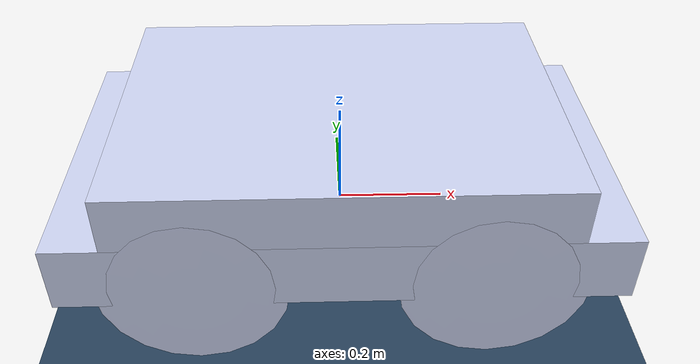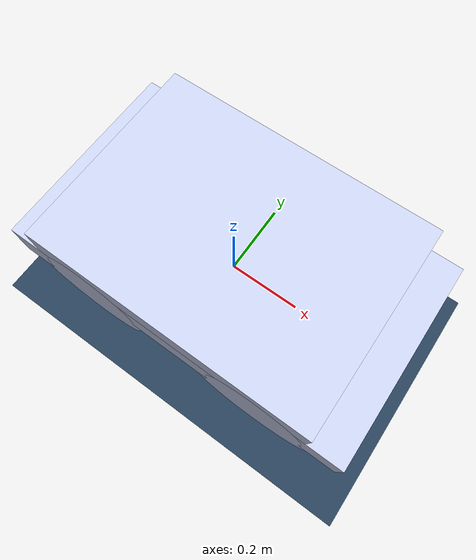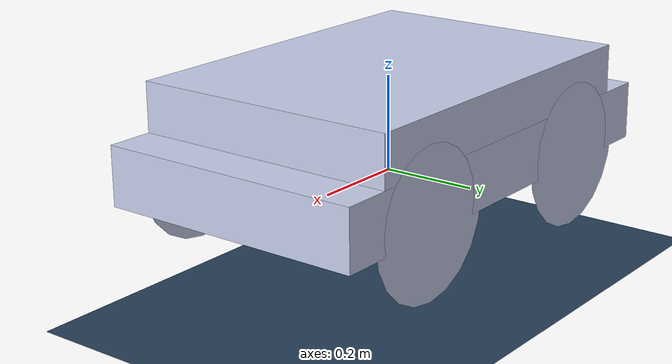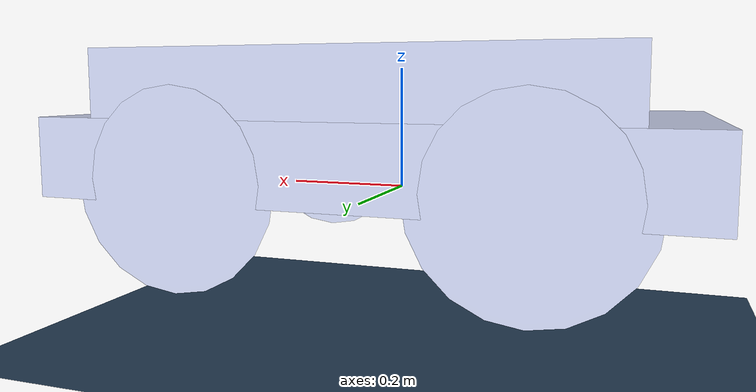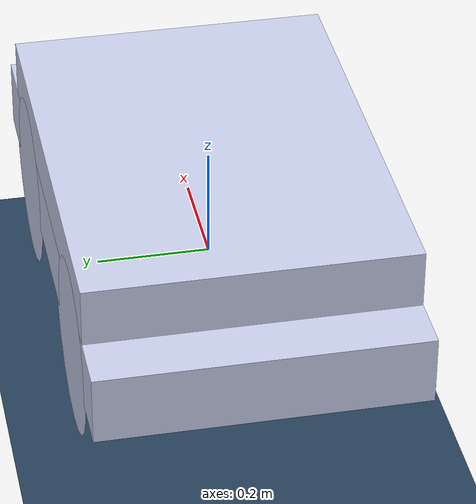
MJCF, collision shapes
<mujoco model="husky_field">

	<include file="husky.xml"/>

	<default>
        <default class ="viz">
            <geom contype="0" conaffinity="0" group="1" type="mesh" rgba=".6 .6 .7 1" />
        </default>
        <default class="cls">
            <geom group="2" rgba="0.79216 0.81961 0.93333 0.5"/>
        </default>
    </default>

	<asset>
		<texture name="floor_tex" type="2d" builtin="checker" rgb1=".2 .3 .4" rgb2=".1 .2 .3" width="100" height="100" />
		<material name="floor_material" texture="floor_tex" texuniform="true" />
	</asset>

	<worldbody>
		<geom name="ground" type="plane" size="5 5 1" pos="0 0 -.25" material="floor_material"/>
	</worldbody>
    <keyframe>
        <key name="front" time="0" qpos ="0 0 -0.14 1 0 0 0
                                    0.0 0.0
                                    0.0 0.0"/>
    </keyframe>
</mujoco>

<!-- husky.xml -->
<mujoco model="husky">
    <compiler angle="radian" meshdir="../meshes/" />
    <size njmax="500" nconmax="100" />
    <asset>
        <mesh name="top_plate" file="top_plate.stl" />
        <mesh name="top_chassis" file="top_chassis.stl"/>
        <mesh name="base_link" file="base_link.stl"/>
        <mesh name="user_rail" file="user_rail.stl"/>
        <mesh name="bumper" file="bumper.stl"/>
        <mesh name="wheel" file="wheel.stl"/>
    </asset>
    <worldbody>
        <body name="husky" pos = "0 0 0">
            <inertial pos="0 0 0" quat="0.707107 0 0 0.707107"  mass = "46.034" fullinertia="0.6022 1.7386 2.0296 -0.02364 -0.1197 -0.001544"/>
            <joint name="centroid" type="free" pos="0 0 0"/>
            <geom class="cls" size="0.4937 0.28545 0.061875" pos="0 0 0.061875" type="box" />
            <geom class="cls" size="0.39496 0.28545 0.051875" pos="0 0 0.175625" type="box" />
            <geom class="viz" pos="0.0812 0 0.245" type="mesh" mesh="top_plate" />
            <geom class="viz" pos="-0.48 0 0.091"  quat="0 0 1 0" type="mesh" mesh="bumper" />
            <geom class="viz" pos="0.48 0 0.091" type="mesh" mesh="bumper" />
            <geom class="viz" pos="0 0 0" type="mesh" mesh="base_link" />
            <geom class="viz" pos="0 0 0" type="mesh" mesh="top_chassis" />
            <body name="front_left_wheel_link" pos="0.256 0.2854 0.03282">
                <inertial pos="0 0 0" quat="0.707107 0 0 0.707107" mass="2.637" diaginertia="0.04411 0.02467 0.02467" />
                <joint name="f-l-drive-hinge" type="hinge" pos="0 0 0" axis="0 1 0" damping="0.01"/>
                <geom class="viz" pos="0 0 0" rgba="0.20313 0.20313 0.20313 1" quat="0 0 0 1" mesh="wheel" />
                <geom class="cls" size="0.1651 0.1651 0.0001" quat="0.707107 0.707106 0 0" type="ellipsoid" />
            </body>
            <body name="front_right_wheel_link" pos="0.256 -0.2854 0.03282">
                <inertial pos="0 0 0" quat="0.707107 0 0 0.707107" mass="2.637" diaginertia="0.04411 0.02467 0.02467" />
                <joint name="f-r-drive-hinge" type="hinge" pos="0 0 0" axis="0 -1 0" damping="0.01"/>
                <geom class="viz" pos="0 0 0" rgba="0.20313 0.20313 0.20313 1" quat="0 0 0 1" mesh="wheel" />
                <geom class="cls" size="0.1651 0.1651 0.0001" quat="0.707107 0.707106 0 0" type="ellipsoid"/>
            </body>
            <body name="rear_left_wheel_link" pos="-0.256 0.2854 0.03282">
                <inertial pos="0 0 0" quat="0.707107 0 0 0.707107" mass="2.637" diaginertia="0.04411 0.02467 0.02467" />
                <joint name="r-l-drive-hinge" type="hinge" pos="0 0 0" axis="0 1 0" damping="0.01"/>
                <geom class="viz" pos="0 0 0" rgba="0.20313 0.20313 0.20313 1" quat="0 0 0 1" mesh="wheel" />
                <geom class="cls" size="0.1651 0.1651 0.0001" quat="0.707107 0.707106 0 0" type="ellipsoid"/>
            </body>
            <body name="rear_right_wheel_link" pos="-0.256 -0.2854 0.03282">
                <inertial pos="0 0 0" quat="0.707107 0 0 0.707107" mass="2.637" diaginertia="0.04411 0.02467 0.02467" />
                <joint name="r-r-drive-hinge" type="hinge" pos="0 0 0" axis="0 -1 0" damping="0.01"/>
                <geom class="viz" pos="0 0 0" rgba="0.20313 0.20313 0.20313 1" quat="0 0 0 1" mesh="wheel" />
                <geom class="cls" size="0.1651 0.1651 0.0001" quat="0.707107 0.707106 0 0" type="ellipsoid"/>
            </body>
        </body>
    </worldbody>

    <actuator>
        <motor name="f_l" joint="f-l-drive-hinge"/>
        <motor name="f_r" joint="f-r-drive-hinge"/>
        <motor name="r_l" joint="r-l-drive-hinge"/>
        <motor name="r_r" joint="r-r-drive-hinge"/>
    </actuator>
</mujoco>
